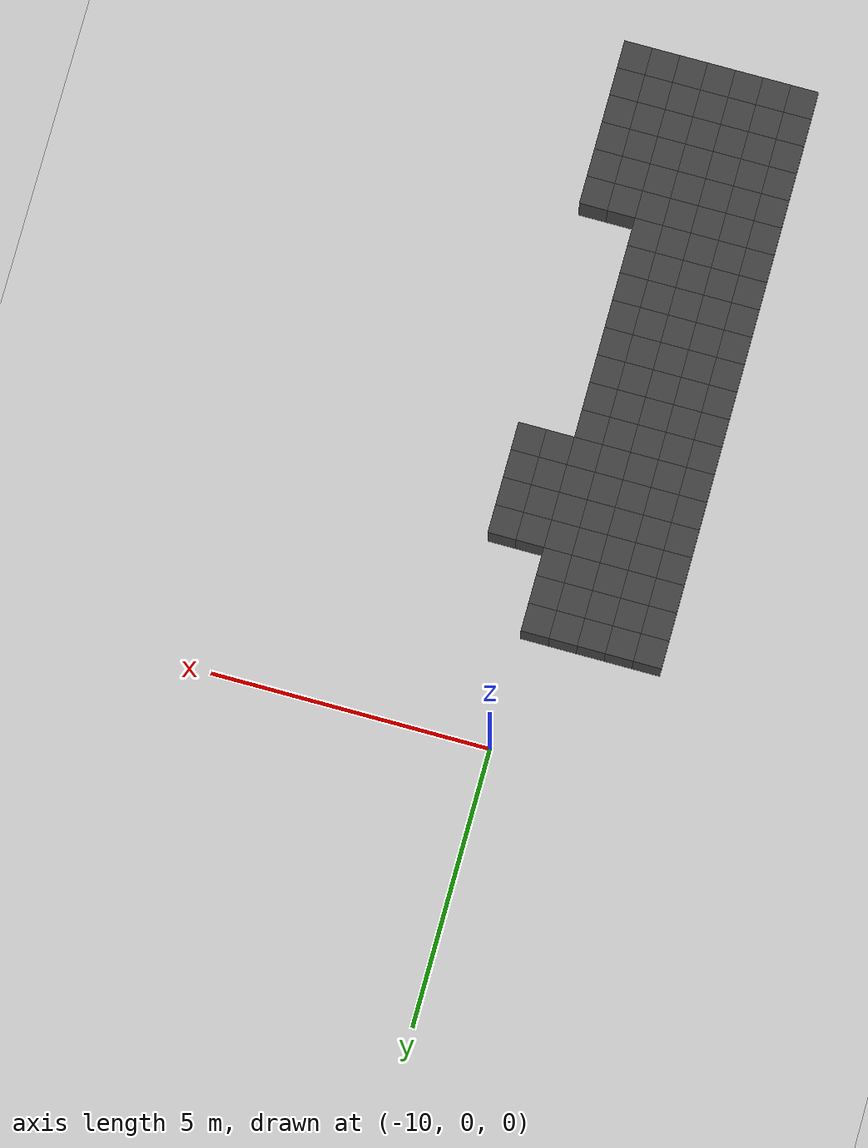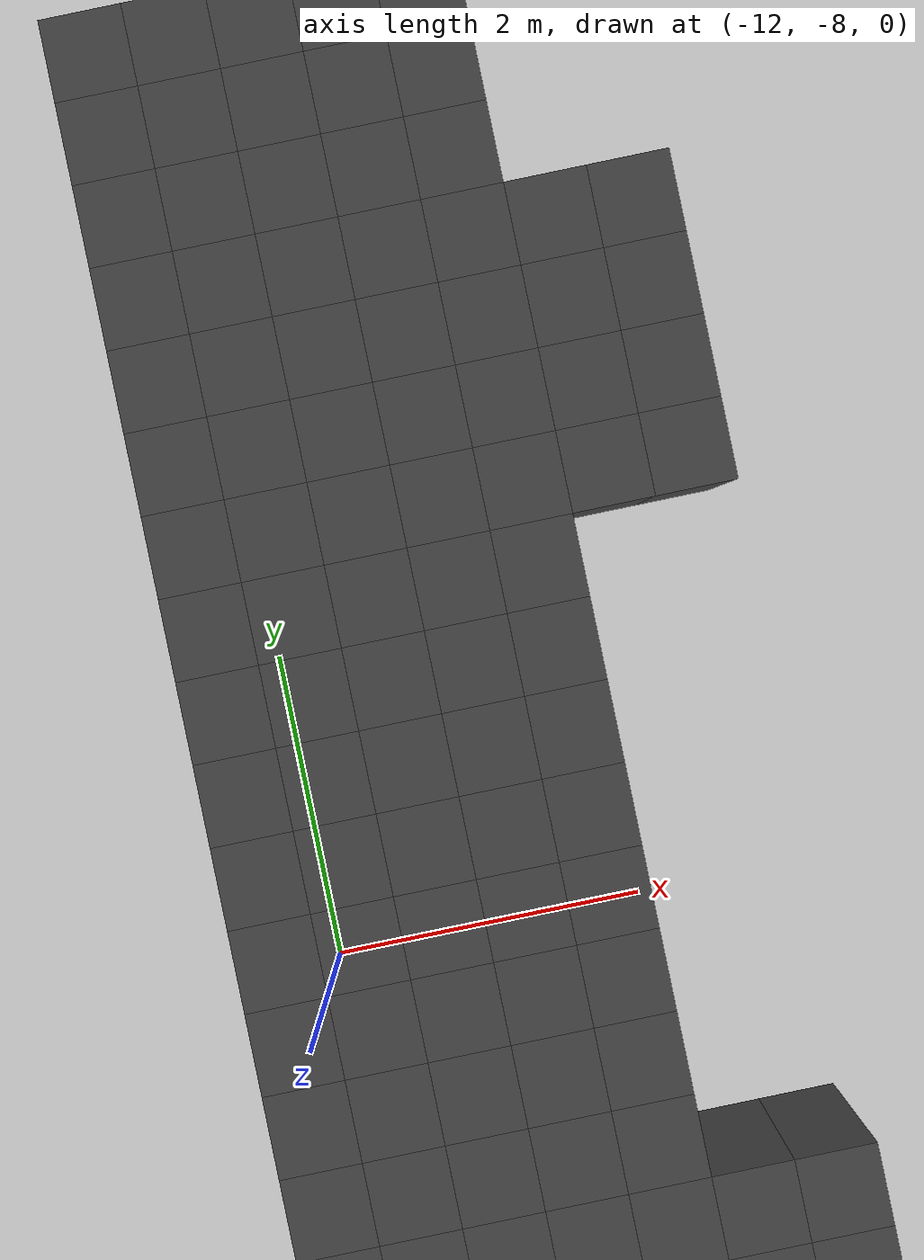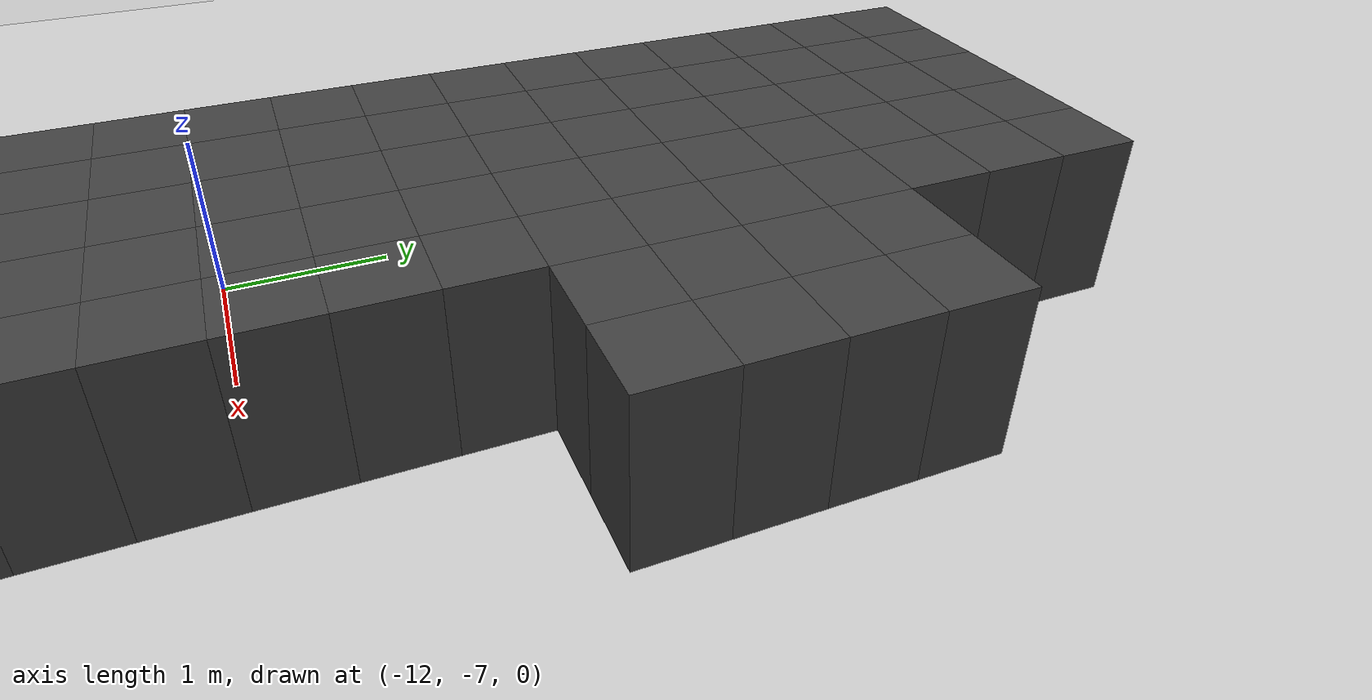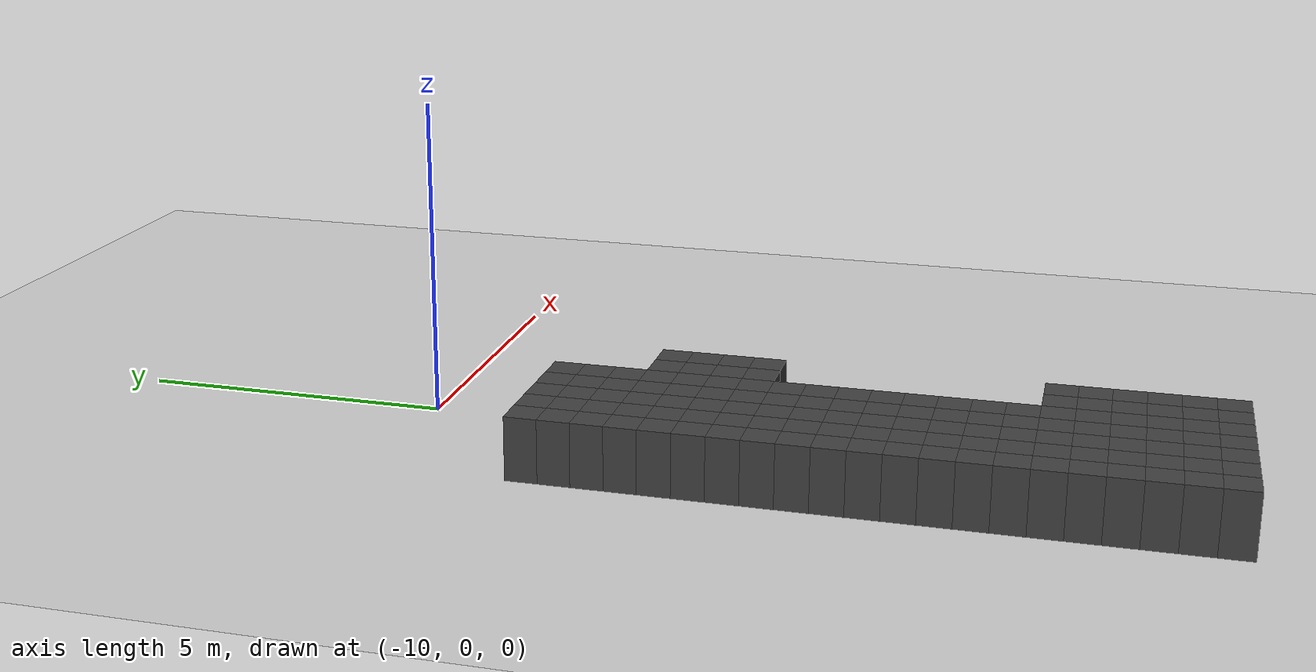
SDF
<sdf version="1.7">
 <world name="map_14495">
  <model name="ground_plane">
   <static>true</static>
   <link name="link">
    <collision name="collision">
     <geometry><plane><normal>0 0 1</normal><size>200 200</size></plane></geometry>
    </collision>
    <visual name="visual">
     <geometry><plane><normal>0 0 1</normal><size>200 200</size></plane></geometry>
     <material><ambient>0.8 0.8 0.8 1</ambient><diffuse>0.8 0.8 0.8 1</diffuse></material>
    </visual>
   </link>
  </model>
  <model name="maze_environment">
   <static>true</static>
   <link name="wall_1046">
    <pose>-12.250 -2.250 0.500 0 0 0</pose>
    <collision name="col"><geometry><box><size>0.5 0.5 1.0</size></box></geometry></collision>
    <visual name="vis">
     <geometry><box><size>0.5 0.5 1.0</size></box></geometry>
     <material><ambient>0.15 0.15 0.15 1</ambient><diffuse>0.25 0.25 0.25 1</diffuse></material>
    </visual>
   </link>
   <link name="wall_1047">
    <pose>-11.750 -2.250 0.500 0 0 0</pose>
    <collision name="col"><geometry><box><size>0.5 0.5 1.0</size></box></geometry></collision>
    <visual name="vis">
     <geometry><box><size>0.5 0.5 1.0</size></box></geometry>
     <material><ambient>0.15 0.15 0.15 1</ambient><diffuse>0.25 0.25 0.25 1</diffuse></material>
    </visual>
   </link>
   <link name="wall_1048">
    <pose>-11.250 -2.250 0.500 0 0 0</pose>
    <collision name="col"><geometry><box><size>0.5 0.5 1.0</size></box></geometry></collision>
    <visual name="vis">
     <geometry><box><size>0.5 0.5 1.0</size></box></geometry>
     <material><ambient>0.15 0.15 0.15 1</ambient><diffuse>0.25 0.25 0.25 1</diffuse></material>
    </visual>
   </link>
   <link name="wall_1049">
    <pose>-10.750 -2.250 0.500 0 0 0</pose>
    <collision name="col"><geometry><box><size>0.5 0.5 1.0</size></box></geometry></collision>
    <visual name="vis">
     <geometry><box><size>0.5 0.5 1.0</size></box></geometry>
     <material><ambient>0.15 0.15 0.15 1</ambient><diffuse>0.25 0.25 0.25 1</diffuse></material>
    </visual>
   </link>
   <link name="wall_1050">
    <pose>-10.250 -2.250 0.500 0 0 0</pose>
    <collision name="col"><geometry><box><size>0.5 0.5 1.0</size></box></geometry></collision>
    <visual name="vis">
     <geometry><box><size>0.5 0.5 1.0</size></box></geometry>
     <material><ambient>0.15 0.15 0.15 1</ambient><diffuse>0.25 0.25 0.25 1</diffuse></material>
    </visual>
   </link>
   <link name="wall_1079">
    <pose>-12.250 -2.750 0.500 0 0 0</pose>
    <collision name="col"><geometry><box><size>0.5 0.5 1.0</size></box></geometry></collision>
    <visual name="vis">
     <geometry><box><size>0.5 0.5 1.0</size></box></geometry>
     <material><ambient>0.15 0.15 0.15 1</ambient><diffuse>0.25 0.25 0.25 1</diffuse></material>
    </visual>
   </link>
   <link name="wall_1080">
    <pose>-11.750 -2.750 0.500 0 0 0</pose>
    <collision name="col"><geometry><box><size>0.5 0.5 1.0</size></box></geometry></collision>
    <visual name="vis">
     <geometry><box><size>0.5 0.5 1.0</size></box></geometry>
     <material><ambient>0.15 0.15 0.15 1</ambient><diffuse>0.25 0.25 0.25 1</diffuse></material>
    </visual>
   </link>
   <link name="wall_1081">
    <pose>-11.250 -2.750 0.500 0 0 0</pose>
    <collision name="col"><geometry><box><size>0.5 0.5 1.0</size></box></geometry></collision>
    <visual name="vis">
     <geometry><box><size>0.5 0.5 1.0</size></box></geometry>
     <material><ambient>0.15 0.15 0.15 1</ambient><diffuse>0.25 0.25 0.25 1</diffuse></material>
    </visual>
   </link>
   <link name="wall_1082">
    <pose>-10.750 -2.750 0.500 0 0 0</pose>
    <collision name="col"><geometry><box><size>0.5 0.5 1.0</size></box></geometry></collision>
    <visual name="vis">
     <geometry><box><size>0.5 0.5 1.0</size></box></geometry>
     <material><ambient>0.15 0.15 0.15 1</ambient><diffuse>0.25 0.25 0.25 1</diffuse></material>
    </visual>
   </link>
   <link name="wall_1083">
    <pose>-10.250 -2.750 0.500 0 0 0</pose>
    <collision name="col"><geometry><box><size>0.5 0.5 1.0</size></box></geometry></collision>
    <visual name="vis">
     <geometry><box><size>0.5 0.5 1.0</size></box></geometry>
     <material><ambient>0.15 0.15 0.15 1</ambient><diffuse>0.25 0.25 0.25 1</diffuse></material>
    </visual>
   </link>
   <link name="wall_1114">
    <pose>-12.250 -3.250 0.500 0 0 0</pose>
    <collision name="col"><geometry><box><size>0.5 0.5 1.0</size></box></geometry></collision>
    <visual name="vis">
     <geometry><box><size>0.5 0.5 1.0</size></box></geometry>
     <material><ambient>0.15 0.15 0.15 1</ambient><diffuse>0.25 0.25 0.25 1</diffuse></material>
    </visual>
   </link>
   <link name="wall_1115">
    <pose>-11.750 -3.250 0.500 0 0 0</pose>
    <collision name="col"><geometry><box><size>0.5 0.5 1.0</size></box></geometry></collision>
    <visual name="vis">
     <geometry><box><size>0.5 0.5 1.0</size></box></geometry>
     <material><ambient>0.15 0.15 0.15 1</ambient><diffuse>0.25 0.25 0.25 1</diffuse></material>
    </visual>
   </link>
   <link name="wall_1116">
    <pose>-11.250 -3.250 0.500 0 0 0</pose>
    <collision name="col"><geometry><box><size>0.5 0.5 1.0</size></box></geometry></collision>
    <visual name="vis">
     <geometry><box><size>0.5 0.5 1.0</size></box></geometry>
     <material><ambient>0.15 0.15 0.15 1</ambient><diffuse>0.25 0.25 0.25 1</diffuse></material>
    </visual>
   </link>
   <link name="wall_1117">
    <pose>-10.750 -3.250 0.500 0 0 0</pose>
    <collision name="col"><geometry><box><size>0.5 0.5 1.0</size></box></geometry></collision>
    <visual name="vis">
     <geometry><box><size>0.5 0.5 1.0</size></box></geometry>
     <material><ambient>0.15 0.15 0.15 1</ambient><diffuse>0.25 0.25 0.25 1</diffuse></material>
    </visual>
   </link>
   <link name="wall_1118">
    <pose>-10.250 -3.250 0.500 0 0 0</pose>
    <collision name="col"><geometry><box><size>0.5 0.5 1.0</size></box></geometry></collision>
    <visual name="vis">
     <geometry><box><size>0.5 0.5 1.0</size></box></geometry>
     <material><ambient>0.15 0.15 0.15 1</ambient><diffuse>0.25 0.25 0.25 1</diffuse></material>
    </visual>
   </link>
   <link name="wall_1149">
    <pose>-12.250 -3.750 0.500 0 0 0</pose>
    <collision name="col"><geometry><box><size>0.5 0.5 1.0</size></box></geometry></collision>
    <visual name="vis">
     <geometry><box><size>0.5 0.5 1.0</size></box></geometry>
     <material><ambient>0.15 0.15 0.15 1</ambient><diffuse>0.25 0.25 0.25 1</diffuse></material>
    </visual>
   </link>
   <link name="wall_1150">
    <pose>-11.750 -3.750 0.500 0 0 0</pose>
    <collision name="col"><geometry><box><size>0.5 0.5 1.0</size></box></geometry></collision>
    <visual name="vis">
     <geometry><box><size>0.5 0.5 1.0</size></box></geometry>
     <material><ambient>0.15 0.15 0.15 1</ambient><diffuse>0.25 0.25 0.25 1</diffuse></material>
    </visual>
   </link>
   <link name="wall_1151">
    <pose>-11.250 -3.750 0.500 0 0 0</pose>
    <collision name="col"><geometry><box><size>0.5 0.5 1.0</size></box></geometry></collision>
    <visual name="vis">
     <geometry><box><size>0.5 0.5 1.0</size></box></geometry>
     <material><ambient>0.15 0.15 0.15 1</ambient><diffuse>0.25 0.25 0.25 1</diffuse></material>
    </visual>
   </link>
   <link name="wall_1152">
    <pose>-10.750 -3.750 0.500 0 0 0</pose>
    <collision name="col"><geometry><box><size>0.5 0.5 1.0</size></box></geometry></collision>
    <visual name="vis">
     <geometry><box><size>0.5 0.5 1.0</size></box></geometry>
     <material><ambient>0.15 0.15 0.15 1</ambient><diffuse>0.25 0.25 0.25 1</diffuse></material>
    </visual>
   </link>
   <link name="wall_1153">
    <pose>-10.250 -3.750 0.500 0 0 0</pose>
    <collision name="col"><geometry><box><size>0.5 0.5 1.0</size></box></geometry></collision>
    <visual name="vis">
     <geometry><box><size>0.5 0.5 1.0</size></box></geometry>
     <material><ambient>0.15 0.15 0.15 1</ambient><diffuse>0.25 0.25 0.25 1</diffuse></material>
    </visual>
   </link>
   <link name="wall_1154">
    <pose>-9.750 -3.750 0.500 0 0 0</pose>
    <collision name="col"><geometry><box><size>0.5 0.5 1.0</size></box></geometry></collision>
    <visual name="vis">
     <geometry><box><size>0.5 0.5 1.0</size></box></geometry>
     <material><ambient>0.15 0.15 0.15 1</ambient><diffuse>0.25 0.25 0.25 1</diffuse></material>
    </visual>
   </link>
   <link name="wall_1155">
    <pose>-9.250 -3.750 0.500 0 0 0</pose>
    <collision name="col"><geometry><box><size>0.5 0.5 1.0</size></box></geometry></collision>
    <visual name="vis">
     <geometry><box><size>0.5 0.5 1.0</size></box></geometry>
     <material><ambient>0.15 0.15 0.15 1</ambient><diffuse>0.25 0.25 0.25 1</diffuse></material>
    </visual>
   </link>
   <link name="wall_1196">
    <pose>-12.250 -4.250 0.500 0 0 0</pose>
    <collision name="col"><geometry><box><size>0.5 0.5 1.0</size></box></geometry></collision>
    <visual name="vis">
     <geometry><box><size>0.5 0.5 1.0</size></box></geometry>
     <material><ambient>0.15 0.15 0.15 1</ambient><diffuse>0.25 0.25 0.25 1</diffuse></material>
    </visual>
   </link>
   <link name="wall_1197">
    <pose>-11.750 -4.250 0.500 0 0 0</pose>
    <collision name="col"><geometry><box><size>0.5 0.5 1.0</size></box></geometry></collision>
    <visual name="vis">
     <geometry><box><size>0.5 0.5 1.0</size></box></geometry>
     <material><ambient>0.15 0.15 0.15 1</ambient><diffuse>0.25 0.25 0.25 1</diffuse></material>
    </visual>
   </link>
   <link name="wall_1198">
    <pose>-11.250 -4.250 0.500 0 0 0</pose>
    <collision name="col"><geometry><box><size>0.5 0.5 1.0</size></box></geometry></collision>
    <visual name="vis">
     <geometry><box><size>0.5 0.5 1.0</size></box></geometry>
     <material><ambient>0.15 0.15 0.15 1</ambient><diffuse>0.25 0.25 0.25 1</diffuse></material>
    </visual>
   </link>
   <link name="wall_1199">
    <pose>-10.750 -4.250 0.500 0 0 0</pose>
    <collision name="col"><geometry><box><size>0.5 0.5 1.0</size></box></geometry></collision>
    <visual name="vis">
     <geometry><box><size>0.5 0.5 1.0</size></box></geometry>
     <material><ambient>0.15 0.15 0.15 1</ambient><diffuse>0.25 0.25 0.25 1</diffuse></material>
    </visual>
   </link>
   <link name="wall_1200">
    <pose>-10.250 -4.250 0.500 0 0 0</pose>
    <collision name="col"><geometry><box><size>0.5 0.5 1.0</size></box></geometry></collision>
    <visual name="vis">
     <geometry><box><size>0.5 0.5 1.0</size></box></geometry>
     <material><ambient>0.15 0.15 0.15 1</ambient><diffuse>0.25 0.25 0.25 1</diffuse></material>
    </visual>
   </link>
   <link name="wall_1201">
    <pose>-9.750 -4.250 0.500 0 0 0</pose>
    <collision name="col"><geometry><box><size>0.5 0.5 1.0</size></box></geometry></collision>
    <visual name="vis">
     <geometry><box><size>0.5 0.5 1.0</size></box></geometry>
     <material><ambient>0.15 0.15 0.15 1</ambient><diffuse>0.25 0.25 0.25 1</diffuse></material>
    </visual>
   </link>
   <link name="wall_1202">
    <pose>-9.250 -4.250 0.500 0 0 0</pose>
    <collision name="col"><geometry><box><size>0.5 0.5 1.0</size></box></geometry></collision>
    <visual name="vis">
     <geometry><box><size>0.5 0.5 1.0</size></box></geometry>
     <material><ambient>0.15 0.15 0.15 1</ambient><diffuse>0.25 0.25 0.25 1</diffuse></material>
    </visual>
   </link>
   <link name="wall_1243">
    <pose>-12.250 -4.750 0.500 0 0 0</pose>
    <collision name="col"><geometry><box><size>0.5 0.5 1.0</size></box></geometry></collision>
    <visual name="vis">
     <geometry><box><size>0.5 0.5 1.0</size></box></geometry>
     <material><ambient>0.15 0.15 0.15 1</ambient><diffuse>0.25 0.25 0.25 1</diffuse></material>
    </visual>
   </link>
   <link name="wall_1244">
    <pose>-11.750 -4.750 0.500 0 0 0</pose>
    <collision name="col"><geometry><box><size>0.5 0.5 1.0</size></box></geometry></collision>
    <visual name="vis">
     <geometry><box><size>0.5 0.5 1.0</size></box></geometry>
     <material><ambient>0.15 0.15 0.15 1</ambient><diffuse>0.25 0.25 0.25 1</diffuse></material>
    </visual>
   </link>
   <link name="wall_1245">
    <pose>-11.250 -4.750 0.500 0 0 0</pose>
    <collision name="col"><geometry><box><size>0.5 0.5 1.0</size></box></geometry></collision>
    <visual name="vis">
     <geometry><box><size>0.5 0.5 1.0</size></box></geometry>
     <material><ambient>0.15 0.15 0.15 1</ambient><diffuse>0.25 0.25 0.25 1</diffuse></material>
    </visual>
   </link>
   <link name="wall_1246">
    <pose>-10.750 -4.750 0.500 0 0 0</pose>
    <collision name="col"><geometry><box><size>0.5 0.5 1.0</size></box></geometry></collision>
    <visual name="vis">
     <geometry><box><size>0.5 0.5 1.0</size></box></geometry>
     <material><ambient>0.15 0.15 0.15 1</ambient><diffuse>0.25 0.25 0.25 1</diffuse></material>
    </visual>
   </link>
   <link name="wall_1247">
    <pose>-10.250 -4.750 0.500 0 0 0</pose>
    <collision name="col"><geometry><box><size>0.5 0.5 1.0</size></box></geometry></collision>
    <visual name="vis">
     <geometry><box><size>0.5 0.5 1.0</size></box></geometry>
     <material><ambient>0.15 0.15 0.15 1</ambient><diffuse>0.25 0.25 0.25 1</diffuse></material>
    </visual>
   </link>
   <link name="wall_1248">
    <pose>-9.750 -4.750 0.500 0 0 0</pose>
    <collision name="col"><geometry><box><size>0.5 0.5 1.0</size></box></geometry></collision>
    <visual name="vis">
     <geometry><box><size>0.5 0.5 1.0</size></box></geometry>
     <material><ambient>0.15 0.15 0.15 1</ambient><diffuse>0.25 0.25 0.25 1</diffuse></material>
    </visual>
   </link>
   <link name="wall_1249">
    <pose>-9.250 -4.750 0.500 0 0 0</pose>
    <collision name="col"><geometry><box><size>0.5 0.5 1.0</size></box></geometry></collision>
    <visual name="vis">
     <geometry><box><size>0.5 0.5 1.0</size></box></geometry>
     <material><ambient>0.15 0.15 0.15 1</ambient><diffuse>0.25 0.25 0.25 1</diffuse></material>
    </visual>
   </link>
   <link name="wall_1279">
    <pose>-12.250 -5.250 0.500 0 0 0</pose>
    <collision name="col"><geometry><box><size>0.5 0.5 1.0</size></box></geometry></collision>
    <visual name="vis">
     <geometry><box><size>0.5 0.5 1.0</size></box></geometry>
     <material><ambient>0.15 0.15 0.15 1</ambient><diffuse>0.25 0.25 0.25 1</diffuse></material>
    </visual>
   </link>
   <link name="wall_1280">
    <pose>-11.750 -5.250 0.500 0 0 0</pose>
    <collision name="col"><geometry><box><size>0.5 0.5 1.0</size></box></geometry></collision>
    <visual name="vis">
     <geometry><box><size>0.5 0.5 1.0</size></box></geometry>
     <material><ambient>0.15 0.15 0.15 1</ambient><diffuse>0.25 0.25 0.25 1</diffuse></material>
    </visual>
   </link>
   <link name="wall_1281">
    <pose>-11.250 -5.250 0.500 0 0 0</pose>
    <collision name="col"><geometry><box><size>0.5 0.5 1.0</size></box></geometry></collision>
    <visual name="vis">
     <geometry><box><size>0.5 0.5 1.0</size></box></geometry>
     <material><ambient>0.15 0.15 0.15 1</ambient><diffuse>0.25 0.25 0.25 1</diffuse></material>
    </visual>
   </link>
   <link name="wall_1282">
    <pose>-10.750 -5.250 0.500 0 0 0</pose>
    <collision name="col"><geometry><box><size>0.5 0.5 1.0</size></box></geometry></collision>
    <visual name="vis">
     <geometry><box><size>0.5 0.5 1.0</size></box></geometry>
     <material><ambient>0.15 0.15 0.15 1</ambient><diffuse>0.25 0.25 0.25 1</diffuse></material>
    </visual>
   </link>
   <link name="wall_1283">
    <pose>-10.250 -5.250 0.500 0 0 0</pose>
    <collision name="col"><geometry><box><size>0.5 0.5 1.0</size></box></geometry></collision>
    <visual name="vis">
     <geometry><box><size>0.5 0.5 1.0</size></box></geometry>
     <material><ambient>0.15 0.15 0.15 1</ambient><diffuse>0.25 0.25 0.25 1</diffuse></material>
    </visual>
   </link>
   <link name="wall_1284">
    <pose>-9.750 -5.250 0.500 0 0 0</pose>
    <collision name="col"><geometry><box><size>0.5 0.5 1.0</size></box></geometry></collision>
    <visual name="vis">
     <geometry><box><size>0.5 0.5 1.0</size></box></geometry>
     <material><ambient>0.15 0.15 0.15 1</ambient><diffuse>0.25 0.25 0.25 1</diffuse></material>
    </visual>
   </link>
   <link name="wall_1285">
    <pose>-9.250 -5.250 0.500 0 0 0</pose>
    <collision name="col"><geometry><box><size>0.5 0.5 1.0</size></box></geometry></collision>
    <visual name="vis">
     <geometry><box><size>0.5 0.5 1.0</size></box></geometry>
     <material><ambient>0.15 0.15 0.15 1</ambient><diffuse>0.25 0.25 0.25 1</diffuse></material>
    </visual>
   </link>
   <link name="wall_1315">
    <pose>-12.250 -5.750 0.500 0 0 0</pose>
    <collision name="col"><geometry><box><size>0.5 0.5 1.0</size></box></geometry></collision>
    <visual name="vis">
     <geometry><box><size>0.5 0.5 1.0</size></box></geometry>
     <material><ambient>0.15 0.15 0.15 1</ambient><diffuse>0.25 0.25 0.25 1</diffuse></material>
    </visual>
   </link>
   <link name="wall_1316">
    <pose>-11.750 -5.750 0.500 0 0 0</pose>
    <collision name="col"><geometry><box><size>0.5 0.5 1.0</size></box></geometry></collision>
    <visual name="vis">
     <geometry><box><size>0.5 0.5 1.0</size></box></geometry>
     <material><ambient>0.15 0.15 0.15 1</ambient><diffuse>0.25 0.25 0.25 1</diffuse></material>
    </visual>
   </link>
   <link name="wall_1317">
    <pose>-11.250 -5.750 0.500 0 0 0</pose>
    <collision name="col"><geometry><box><size>0.5 0.5 1.0</size></box></geometry></collision>
    <visual name="vis">
     <geometry><box><size>0.5 0.5 1.0</size></box></geometry>
     <material><ambient>0.15 0.15 0.15 1</ambient><diffuse>0.25 0.25 0.25 1</diffuse></material>
    </visual>
   </link>
   <link name="wall_1318">
    <pose>-10.750 -5.750 0.500 0 0 0</pose>
    <collision name="col"><geometry><box><size>0.5 0.5 1.0</size></box></geometry></collision>
    <visual name="vis">
     <geometry><box><size>0.5 0.5 1.0</size></box></geometry>
     <material><ambient>0.15 0.15 0.15 1</ambient><diffuse>0.25 0.25 0.25 1</diffuse></material>
    </visual>
   </link>
   <link name="wall_1319">
    <pose>-10.250 -5.750 0.500 0 0 0</pose>
    <collision name="col"><geometry><box><size>0.5 0.5 1.0</size></box></geometry></collision>
    <visual name="vis">
     <geometry><box><size>0.5 0.5 1.0</size></box></geometry>
     <material><ambient>0.15 0.15 0.15 1</ambient><diffuse>0.25 0.25 0.25 1</diffuse></material>
    </visual>
   </link>
   <link name="wall_1339">
    <pose>-12.250 -6.250 0.500 0 0 0</pose>
    <collision name="col"><geometry><box><size>0.5 0.5 1.0</size></box></geometry></collision>
    <visual name="vis">
     <geometry><box><size>0.5 0.5 1.0</size></box></geometry>
     <material><ambient>0.15 0.15 0.15 1</ambient><diffuse>0.25 0.25 0.25 1</diffuse></material>
    </visual>
   </link>
   <link name="wall_1340">
    <pose>-11.750 -6.250 0.500 0 0 0</pose>
    <collision name="col"><geometry><box><size>0.5 0.5 1.0</size></box></geometry></collision>
    <visual name="vis">
     <geometry><box><size>0.5 0.5 1.0</size></box></geometry>
     <material><ambient>0.15 0.15 0.15 1</ambient><diffuse>0.25 0.25 0.25 1</diffuse></material>
    </visual>
   </link>
   <link name="wall_1341">
    <pose>-11.250 -6.250 0.500 0 0 0</pose>
    <collision name="col"><geometry><box><size>0.5 0.5 1.0</size></box></geometry></collision>
    <visual name="vis">
     <geometry><box><size>0.5 0.5 1.0</size></box></geometry>
     <material><ambient>0.15 0.15 0.15 1</ambient><diffuse>0.25 0.25 0.25 1</diffuse></material>
    </visual>
   </link>
   <link name="wall_1342">
    <pose>-10.750 -6.250 0.500 0 0 0</pose>
    <collision name="col"><geometry><box><size>0.5 0.5 1.0</size></box></geometry></collision>
    <visual name="vis">
     <geometry><box><size>0.5 0.5 1.0</size></box></geometry>
     <material><ambient>0.15 0.15 0.15 1</ambient><diffuse>0.25 0.25 0.25 1</diffuse></material>
    </visual>
   </link>
   <link name="wall_1343">
    <pose>-10.250 -6.250 0.500 0 0 0</pose>
    <collision name="col"><geometry><box><size>0.5 0.5 1.0</size></box></geometry></collision>
    <visual name="vis">
     <geometry><box><size>0.5 0.5 1.0</size></box></geometry>
     <material><ambient>0.15 0.15 0.15 1</ambient><diffuse>0.25 0.25 0.25 1</diffuse></material>
    </visual>
   </link>
   <link name="wall_1361">
    <pose>-12.250 -6.750 0.500 0 0 0</pose>
    <collision name="col"><geometry><box><size>0.5 0.5 1.0</size></box></geometry></collision>
    <visual name="vis">
     <geometry><box><size>0.5 0.5 1.0</size></box></geometry>
     <material><ambient>0.15 0.15 0.15 1</ambient><diffuse>0.25 0.25 0.25 1</diffuse></material>
    </visual>
   </link>
   <link name="wall_1362">
    <pose>-11.750 -6.750 0.500 0 0 0</pose>
    <collision name="col"><geometry><box><size>0.5 0.5 1.0</size></box></geometry></collision>
    <visual name="vis">
     <geometry><box><size>0.5 0.5 1.0</size></box></geometry>
     <material><ambient>0.15 0.15 0.15 1</ambient><diffuse>0.25 0.25 0.25 1</diffuse></material>
    </visual>
   </link>
   <link name="wall_1363">
    <pose>-11.250 -6.750 0.500 0 0 0</pose>
    <collision name="col"><geometry><box><size>0.5 0.5 1.0</size></box></geometry></collision>
    <visual name="vis">
     <geometry><box><size>0.5 0.5 1.0</size></box></geometry>
     <material><ambient>0.15 0.15 0.15 1</ambient><diffuse>0.25 0.25 0.25 1</diffuse></material>
    </visual>
   </link>
   <link name="wall_1364">
    <pose>-10.750 -6.750 0.500 0 0 0</pose>
    <collision name="col"><geometry><box><size>0.5 0.5 1.0</size></box></geometry></collision>
    <visual name="vis">
     <geometry><box><size>0.5 0.5 1.0</size></box></geometry>
     <material><ambient>0.15 0.15 0.15 1</ambient><diffuse>0.25 0.25 0.25 1</diffuse></material>
    </visual>
   </link>
   <link name="wall_1365">
    <pose>-10.250 -6.750 0.500 0 0 0</pose>
    <collision name="col"><geometry><box><size>0.5 0.5 1.0</size></box></geometry></collision>
    <visual name="vis">
     <geometry><box><size>0.5 0.5 1.0</size></box></geometry>
     <material><ambient>0.15 0.15 0.15 1</ambient><diffuse>0.25 0.25 0.25 1</diffuse></material>
    </visual>
   </link>
   <link name="wall_1387">
    <pose>-12.250 -7.250 0.500 0 0 0</pose>
    <collision name="col"><geometry><box><size>0.5 0.5 1.0</size></box></geometry></collision>
    <visual name="vis">
     <geometry><box><size>0.5 0.5 1.0</size></box></geometry>
     <material><ambient>0.15 0.15 0.15 1</ambient><diffuse>0.25 0.25 0.25 1</diffuse></material>
    </visual>
   </link>
   <link name="wall_1388">
    <pose>-11.750 -7.250 0.500 0 0 0</pose>
    <collision name="col"><geometry><box><size>0.5 0.5 1.0</size></box></geometry></collision>
    <visual name="vis">
     <geometry><box><size>0.5 0.5 1.0</size></box></geometry>
     <material><ambient>0.15 0.15 0.15 1</ambient><diffuse>0.25 0.25 0.25 1</diffuse></material>
    </visual>
   </link>
   <link name="wall_1389">
    <pose>-11.250 -7.250 0.500 0 0 0</pose>
    <collision name="col"><geometry><box><size>0.5 0.5 1.0</size></box></geometry></collision>
    <visual name="vis">
     <geometry><box><size>0.5 0.5 1.0</size></box></geometry>
     <material><ambient>0.15 0.15 0.15 1</ambient><diffuse>0.25 0.25 0.25 1</diffuse></material>
    </visual>
   </link>
   <link name="wall_1390">
    <pose>-10.750 -7.250 0.500 0 0 0</pose>
    <collision name="col"><geometry><box><size>0.5 0.5 1.0</size></box></geometry></collision>
    <visual name="vis">
     <geometry><box><size>0.5 0.5 1.0</size></box></geometry>
     <material><ambient>0.15 0.15 0.15 1</ambient><diffuse>0.25 0.25 0.25 1</diffuse></material>
    </visual>
   </link>
   <link name="wall_1391">
    <pose>-10.250 -7.250 0.500 0 0 0</pose>
    <collision name="col"><geometry><box><size>0.5 0.5 1.0</size></box></geometry></collision>
    <visual name="vis">
     <geometry><box><size>0.5 0.5 1.0</size></box></geometry>
     <material><ambient>0.15 0.15 0.15 1</ambient><diffuse>0.25 0.25 0.25 1</diffuse></material>
    </visual>
   </link>
   <link name="wall_1420">
    <pose>-12.250 -7.750 0.500 0 0 0</pose>
    <collision name="col"><geometry><box><size>0.5 0.5 1.0</size></box></geometry></collision>
    <visual name="vis">
     <geometry><box><size>0.5 0.5 1.0</size></box></geometry>
     <material><ambient>0.15 0.15 0.15 1</ambient><diffuse>0.25 0.25 0.25 1</diffuse></material>
    </visual>
   </link>
   <link name="wall_1421">
    <pose>-11.750 -7.750 0.500 0 0 0</pose>
    <collision name="col"><geometry><box><size>0.5 0.5 1.0</size></box></geometry></collision>
    <visual name="vis">
     <geometry><box><size>0.5 0.5 1.0</size></box></geometry>
     <material><ambient>0.15 0.15 0.15 1</ambient><diffuse>0.25 0.25 0.25 1</diffuse></material>
    </visual>
   </link>
   <link name="wall_1422">
    <pose>-11.250 -7.750 0.500 0 0 0</pose>
    <collision name="col"><geometry><box><size>0.5 0.5 1.0</size></box></geometry></collision>
    <visual name="vis">
     <geometry><box><size>0.5 0.5 1.0</size></box></geometry>
     <material><ambient>0.15 0.15 0.15 1</ambient><diffuse>0.25 0.25 0.25 1</diffuse></material>
    </visual>
   </link>
   <link name="wall_1423">
    <pose>-10.750 -7.750 0.500 0 0 0</pose>
    <collision name="col"><geometry><box><size>0.5 0.5 1.0</size></box></geometry></collision>
    <visual name="vis">
     <geometry><box><size>0.5 0.5 1.0</size></box></geometry>
     <material><ambient>0.15 0.15 0.15 1</ambient><diffuse>0.25 0.25 0.25 1</diffuse></material>
    </visual>
   </link>
   <link name="wall_1424">
    <pose>-10.250 -7.750 0.500 0 0 0</pose>
    <collision name="col"><geometry><box><size>0.5 0.5 1.0</size></box></geometry></collision>
    <visual name="vis">
     <geometry><box><size>0.5 0.5 1.0</size></box></geometry>
     <material><ambient>0.15 0.15 0.15 1</ambient><diffuse>0.25 0.25 0.25 1</diffuse></material>
    </visual>
   </link>
   <link name="wall_1453">
    <pose>-12.250 -8.250 0.500 0 0 0</pose>
    <collision name="col"><geometry><box><size>0.5 0.5 1.0</size></box></geometry></collision>
    <visual name="vis">
     <geometry><box><size>0.5 0.5 1.0</size></box></geometry>
     <material><ambient>0.15 0.15 0.15 1</ambient><diffuse>0.25 0.25 0.25 1</diffuse></material>
    </visual>
   </link>
   <link name="wall_1454">
    <pose>-11.750 -8.250 0.500 0 0 0</pose>
    <collision name="col"><geometry><box><size>0.5 0.5 1.0</size></box></geometry></collision>
    <visual name="vis">
     <geometry><box><size>0.5 0.5 1.0</size></box></geometry>
     <material><ambient>0.15 0.15 0.15 1</ambient><diffuse>0.25 0.25 0.25 1</diffuse></material>
    </visual>
   </link>
   <link name="wall_1455">
    <pose>-11.250 -8.250 0.500 0 0 0</pose>
    <collision name="col"><geometry><box><size>0.5 0.5 1.0</size></box></geometry></collision>
    <visual name="vis">
     <geometry><box><size>0.5 0.5 1.0</size></box></geometry>
     <material><ambient>0.15 0.15 0.15 1</ambient><diffuse>0.25 0.25 0.25 1</diffuse></material>
    </visual>
   </link>
   <link name="wall_1456">
    <pose>-10.750 -8.250 0.500 0 0 0</pose>
    <collision name="col"><geometry><box><size>0.5 0.5 1.0</size></box></geometry></collision>
    <visual name="vis">
     <geometry><box><size>0.5 0.5 1.0</size></box></geometry>
     <material><ambient>0.15 0.15 0.15 1</ambient><diffuse>0.25 0.25 0.25 1</diffuse></material>
    </visual>
   </link>
   <link name="wall_1457">
    <pose>-10.250 -8.250 0.500 0 0 0</pose>
    <collision name="col"><geometry><box><size>0.5 0.5 1.0</size></box></geometry></collision>
    <visual name="vis">
     <geometry><box><size>0.5 0.5 1.0</size></box></geometry>
     <material><ambient>0.15 0.15 0.15 1</ambient><diffuse>0.25 0.25 0.25 1</diffuse></material>
    </visual>
   </link>
   <link name="wall_1484">
    <pose>-12.250 -8.750 0.500 0 0 0</pose>
    <collision name="col"><geometry><box><size>0.5 0.5 1.0</size></box></geometry></collision>
    <visual name="vis">
     <geometry><box><size>0.5 0.5 1.0</size></box></geometry>
     <material><ambient>0.15 0.15 0.15 1</ambient><diffuse>0.25 0.25 0.25 1</diffuse></material>
    </visual>
   </link>
   <link name="wall_1485">
    <pose>-11.750 -8.750 0.500 0 0 0</pose>
    <collision name="col"><geometry><box><size>0.5 0.5 1.0</size></box></geometry></collision>
    <visual name="vis">
     <geometry><box><size>0.5 0.5 1.0</size></box></geometry>
     <material><ambient>0.15 0.15 0.15 1</ambient><diffuse>0.25 0.25 0.25 1</diffuse></material>
    </visual>
   </link>
   <link name="wall_1486">
    <pose>-11.250 -8.750 0.500 0 0 0</pose>
    <collision name="col"><geometry><box><size>0.5 0.5 1.0</size></box></geometry></collision>
    <visual name="vis">
     <geometry><box><size>0.5 0.5 1.0</size></box></geometry>
     <material><ambient>0.15 0.15 0.15 1</ambient><diffuse>0.25 0.25 0.25 1</diffuse></material>
    </visual>
   </link>
   <link name="wall_1487">
    <pose>-10.750 -8.750 0.500 0 0 0</pose>
    <collision name="col"><geometry><box><size>0.5 0.5 1.0</size></box></geometry></collision>
    <visual name="vis">
     <geometry><box><size>0.5 0.5 1.0</size></box></geometry>
     <material><ambient>0.15 0.15 0.15 1</ambient><diffuse>0.25 0.25 0.25 1</diffuse></material>
    </visual>
   </link>
   <link name="wall_1488">
    <pose>-10.250 -8.750 0.500 0 0 0</pose>
    <collision name="col"><geometry><box><size>0.5 0.5 1.0</size></box></geometry></collision>
    <visual name="vis">
     <geometry><box><size>0.5 0.5 1.0</size></box></geometry>
     <material><ambient>0.15 0.15 0.15 1</ambient><diffuse>0.25 0.25 0.25 1</diffuse></material>
    </visual>
   </link>
   <link name="wall_1515">
    <pose>-12.250 -9.250 0.500 0 0 0</pose>
    <collision name="col"><geometry><box><size>0.5 0.5 1.0</size></box></geometry></collision>
    <visual name="vis">
     <geometry><box><size>0.5 0.5 1.0</size></box></geometry>
     <material><ambient>0.15 0.15 0.15 1</ambient><diffuse>0.25 0.25 0.25 1</diffuse></material>
    </visual>
   </link>
   <link name="wall_1516">
    <pose>-11.750 -9.250 0.500 0 0 0</pose>
    <collision name="col"><geometry><box><size>0.5 0.5 1.0</size></box></geometry></collision>
    <visual name="vis">
     <geometry><box><size>0.5 0.5 1.0</size></box></geometry>
     <material><ambient>0.15 0.15 0.15 1</ambient><diffuse>0.25 0.25 0.25 1</diffuse></material>
    </visual>
   </link>
   <link name="wall_1517">
    <pose>-11.250 -9.250 0.500 0 0 0</pose>
    <collision name="col"><geometry><box><size>0.5 0.5 1.0</size></box></geometry></collision>
    <visual name="vis">
     <geometry><box><size>0.5 0.5 1.0</size></box></geometry>
     <material><ambient>0.15 0.15 0.15 1</ambient><diffuse>0.25 0.25 0.25 1</diffuse></material>
    </visual>
   </link>
   <link name="wall_1518">
    <pose>-10.750 -9.250 0.500 0 0 0</pose>
    <collision name="col"><geometry><box><size>0.5 0.5 1.0</size></box></geometry></collision>
    <visual name="vis">
     <geometry><box><size>0.5 0.5 1.0</size></box></geometry>
     <material><ambient>0.15 0.15 0.15 1</ambient><diffuse>0.25 0.25 0.25 1</diffuse></material>
    </visual>
   </link>
   <link name="wall_1519">
    <pose>-10.250 -9.250 0.500 0 0 0</pose>
    <collision name="col"><geometry><box><size>0.5 0.5 1.0</size></box></geometry></collision>
    <visual name="vis">
     <geometry><box><size>0.5 0.5 1.0</size></box></geometry>
     <material><ambient>0.15 0.15 0.15 1</ambient><diffuse>0.25 0.25 0.25 1</diffuse></material>
    </visual>
   </link>
   <link name="wall_1546">
    <pose>-12.250 -9.750 0.500 0 0 0</pose>
    <collision name="col"><geometry><box><size>0.5 0.5 1.0</size></box></geometry></collision>
    <visual name="vis">
     <geometry><box><size>0.5 0.5 1.0</size></box></geometry>
     <material><ambient>0.15 0.15 0.15 1</ambient><diffuse>0.25 0.25 0.25 1</diffuse></material>
    </visual>
   </link>
   <link name="wall_1547">
    <pose>-11.750 -9.750 0.500 0 0 0</pose>
    <collision name="col"><geometry><box><size>0.5 0.5 1.0</size></box></geometry></collision>
    <visual name="vis">
     <geometry><box><size>0.5 0.5 1.0</size></box></geometry>
     <material><ambient>0.15 0.15 0.15 1</ambient><diffuse>0.25 0.25 0.25 1</diffuse></material>
    </visual>
   </link>
   <link name="wall_1548">
    <pose>-11.250 -9.750 0.500 0 0 0</pose>
    <collision name="col"><geometry><box><size>0.5 0.5 1.0</size></box></geometry></collision>
    <visual name="vis">
     <geometry><box><size>0.5 0.5 1.0</size></box></geometry>
     <material><ambient>0.15 0.15 0.15 1</ambient><diffuse>0.25 0.25 0.25 1</diffuse></material>
    </visual>
   </link>
   <link name="wall_1549">
    <pose>-10.750 -9.750 0.500 0 0 0</pose>
    <collision name="col"><geometry><box><size>0.5 0.5 1.0</size></box></geometry></collision>
    <visual name="vis">
     <geometry><box><size>0.5 0.5 1.0</size></box></geometry>
     <material><ambient>0.15 0.15 0.15 1</ambient><diffuse>0.25 0.25 0.25 1</diffuse></material>
    </visual>
   </link>
   <link name="wall_1550">
    <pose>-10.250 -9.750 0.500 0 0 0</pose>
    <collision name="col"><geometry><box><size>0.5 0.5 1.0</size></box></geometry></collision>
    <visual name="vis">
     <geometry><box><size>0.5 0.5 1.0</size></box></geometry>
     <material><ambient>0.15 0.15 0.15 1</ambient><diffuse>0.25 0.25 0.25 1</diffuse></material>
    </visual>
   </link>
   <link name="wall_1551">
    <pose>-9.750 -9.750 0.500 0 0 0</pose>
    <collision name="col"><geometry><box><size>0.5 0.5 1.0</size></box></geometry></collision>
    <visual name="vis">
     <geometry><box><size>0.5 0.5 1.0</size></box></geometry>
     <material><ambient>0.15 0.15 0.15 1</ambient><diffuse>0.25 0.25 0.25 1</diffuse></material>
    </visual>
   </link>
   <link name="wall_1552">
    <pose>-9.250 -9.750 0.500 0 0 0</pose>
    <collision name="col"><geometry><box><size>0.5 0.5 1.0</size></box></geometry></collision>
    <visual name="vis">
     <geometry><box><size>0.5 0.5 1.0</size></box></geometry>
     <material><ambient>0.15 0.15 0.15 1</ambient><diffuse>0.25 0.25 0.25 1</diffuse></material>
    </visual>
   </link>
   <link name="wall_1576">
    <pose>-12.250 -10.250 0.500 0 0 0</pose>
    <collision name="col"><geometry><box><size>0.5 0.5 1.0</size></box></geometry></collision>
    <visual name="vis">
     <geometry><box><size>0.5 0.5 1.0</size></box></geometry>
     <material><ambient>0.15 0.15 0.15 1</ambient><diffuse>0.25 0.25 0.25 1</diffuse></material>
    </visual>
   </link>
   <link name="wall_1577">
    <pose>-11.750 -10.250 0.500 0 0 0</pose>
    <collision name="col"><geometry><box><size>0.5 0.5 1.0</size></box></geometry></collision>
    <visual name="vis">
     <geometry><box><size>0.5 0.5 1.0</size></box></geometry>
     <material><ambient>0.15 0.15 0.15 1</ambient><diffuse>0.25 0.25 0.25 1</diffuse></material>
    </visual>
   </link>
   <link name="wall_1578">
    <pose>-11.250 -10.250 0.500 0 0 0</pose>
    <collision name="col"><geometry><box><size>0.5 0.5 1.0</size></box></geometry></collision>
    <visual name="vis">
     <geometry><box><size>0.5 0.5 1.0</size></box></geometry>
     <material><ambient>0.15 0.15 0.15 1</ambient><diffuse>0.25 0.25 0.25 1</diffuse></material>
    </visual>
   </link>
   <link name="wall_1579">
    <pose>-10.750 -10.250 0.500 0 0 0</pose>
    <collision name="col"><geometry><box><size>0.5 0.5 1.0</size></box></geometry></collision>
    <visual name="vis">
     <geometry><box><size>0.5 0.5 1.0</size></box></geometry>
     <material><ambient>0.15 0.15 0.15 1</ambient><diffuse>0.25 0.25 0.25 1</diffuse></material>
    </visual>
   </link>
   <link name="wall_1580">
    <pose>-10.250 -10.250 0.500 0 0 0</pose>
    <collision name="col"><geometry><box><size>0.5 0.5 1.0</size></box></geometry></collision>
    <visual name="vis">
     <geometry><box><size>0.5 0.5 1.0</size></box></geometry>
     <material><ambient>0.15 0.15 0.15 1</ambient><diffuse>0.25 0.25 0.25 1</diffuse></material>
    </visual>
   </link>
   <link name="wall_1581">
    <pose>-9.750 -10.250 0.500 0 0 0</pose>
    <collision name="col"><geometry><box><size>0.5 0.5 1.0</size></box></geometry></collision>
    <visual name="vis">
     <geometry><box><size>0.5 0.5 1.0</size></box></geometry>
     <material><ambient>0.15 0.15 0.15 1</ambient><diffuse>0.25 0.25 0.25 1</diffuse></material>
    </visual>
   </link>
   <link name="wall_1582">
    <pose>-9.250 -10.250 0.500 0 0 0</pose>
    <collision name="col"><geometry><box><size>0.5 0.5 1.0</size></box></geometry></collision>
    <visual name="vis">
     <geometry><box><size>0.5 0.5 1.0</size></box></geometry>
     <material><ambient>0.15 0.15 0.15 1</ambient><diffuse>0.25 0.25 0.25 1</diffuse></material>
    </visual>
   </link>
   <link name="wall_1609">
    <pose>-12.250 -10.750 0.500 0 0 0</pose>
    <collision name="col"><geometry><box><size>0.5 0.5 1.0</size></box></geometry></collision>
    <visual name="vis">
     <geometry><box><size>0.5 0.5 1.0</size></box></geometry>
     <material><ambient>0.15 0.15 0.15 1</ambient><diffuse>0.25 0.25 0.25 1</diffuse></material>
    </visual>
   </link>
   <link name="wall_1610">
    <pose>-11.750 -10.750 0.500 0 0 0</pose>
    <collision name="col"><geometry><box><size>0.5 0.5 1.0</size></box></geometry></collision>
    <visual name="vis">
     <geometry><box><size>0.5 0.5 1.0</size></box></geometry>
     <material><ambient>0.15 0.15 0.15 1</ambient><diffuse>0.25 0.25 0.25 1</diffuse></material>
    </visual>
   </link>
   <link name="wall_1611">
    <pose>-11.250 -10.750 0.500 0 0 0</pose>
    <collision name="col"><geometry><box><size>0.5 0.5 1.0</size></box></geometry></collision>
    <visual name="vis">
     <geometry><box><size>0.5 0.5 1.0</size></box></geometry>
     <material><ambient>0.15 0.15 0.15 1</ambient><diffuse>0.25 0.25 0.25 1</diffuse></material>
    </visual>
   </link>
   <link name="wall_1612">
    <pose>-10.750 -10.750 0.500 0 0 0</pose>
    <collision name="col"><geometry><box><size>0.5 0.5 1.0</size></box></geometry></collision>
    <visual name="vis">
     <geometry><box><size>0.5 0.5 1.0</size></box></geometry>
     <material><ambient>0.15 0.15 0.15 1</ambient><diffuse>0.25 0.25 0.25 1</diffuse></material>
    </visual>
   </link>
   <link name="wall_1613">
    <pose>-10.250 -10.750 0.500 0 0 0</pose>
    <collision name="col"><geometry><box><size>0.5 0.5 1.0</size></box></geometry></collision>
    <visual name="vis">
     <geometry><box><size>0.5 0.5 1.0</size></box></geometry>
     <material><ambient>0.15 0.15 0.15 1</ambient><diffuse>0.25 0.25 0.25 1</diffuse></material>
    </visual>
   </link>
   <link name="wall_1614">
    <pose>-9.750 -10.750 0.500 0 0 0</pose>
    <collision name="col"><geometry><box><size>0.5 0.5 1.0</size></box></geometry></collision>
    <visual name="vis">
     <geometry><box><size>0.5 0.5 1.0</size></box></geometry>
     <material><ambient>0.15 0.15 0.15 1</ambient><diffuse>0.25 0.25 0.25 1</diffuse></material>
    </visual>
   </link>
   <link name="wall_1615">
    <pose>-9.250 -10.750 0.500 0 0 0</pose>
    <collision name="col"><geometry><box><size>0.5 0.5 1.0</size></box></geometry></collision>
    <visual name="vis">
     <geometry><box><size>0.5 0.5 1.0</size></box></geometry>
     <material><ambient>0.15 0.15 0.15 1</ambient><diffuse>0.25 0.25 0.25 1</diffuse></material>
    </visual>
   </link>
   <link name="wall_1641">
    <pose>-12.250 -11.250 0.500 0 0 0</pose>
    <collision name="col"><geometry><box><size>0.5 0.5 1.0</size></box></geometry></collision>
    <visual name="vis">
     <geometry><box><size>0.5 0.5 1.0</size></box></geometry>
     <material><ambient>0.15 0.15 0.15 1</ambient><diffuse>0.25 0.25 0.25 1</diffuse></material>
    </visual>
   </link>
   <link name="wall_1642">
    <pose>-11.750 -11.250 0.500 0 0 0</pose>
    <collision name="col"><geometry><box><size>0.5 0.5 1.0</size></box></geometry></collision>
    <visual name="vis">
     <geometry><box><size>0.5 0.5 1.0</size></box></geometry>
     <material><ambient>0.15 0.15 0.15 1</ambient><diffuse>0.25 0.25 0.25 1</diffuse></material>
    </visual>
   </link>
   <link name="wall_1643">
    <pose>-11.250 -11.250 0.500 0 0 0</pose>
    <collision name="col"><geometry><box><size>0.5 0.5 1.0</size></box></geometry></collision>
    <visual name="vis">
     <geometry><box><size>0.5 0.5 1.0</size></box></geometry>
     <material><ambient>0.15 0.15 0.15 1</ambient><diffuse>0.25 0.25 0.25 1</diffuse></material>
    </visual>
   </link>
   <link name="wall_1644">
    <pose>-10.750 -11.250 0.500 0 0 0</pose>
    <collision name="col"><geometry><box><size>0.5 0.5 1.0</size></box></geometry></collision>
    <visual name="vis">
     <geometry><box><size>0.5 0.5 1.0</size></box></geometry>
     <material><ambient>0.15 0.15 0.15 1</ambient><diffuse>0.25 0.25 0.25 1</diffuse></material>
    </visual>
   </link>
   <link name="wall_1645">
    <pose>-10.250 -11.250 0.500 0 0 0</pose>
    <collision name="col"><geometry><box><size>0.5 0.5 1.0</size></box></geometry></collision>
    <visual name="vis">
     <geometry><box><size>0.5 0.5 1.0</size></box></geometry>
     <material><ambient>0.15 0.15 0.15 1</ambient><diffuse>0.25 0.25 0.25 1</diffuse></material>
    </visual>
   </link>
   <link name="wall_1646">
    <pose>-9.750 -11.250 0.500 0 0 0</pose>
    <collision name="col"><geometry><box><size>0.5 0.5 1.0</size></box></geometry></collision>
    <visual name="vis">
     <geometry><box><size>0.5 0.5 1.0</size></box></geometry>
     <material><ambient>0.15 0.15 0.15 1</ambient><diffuse>0.25 0.25 0.25 1</diffuse></material>
    </visual>
   </link>
   <link name="wall_1647">
    <pose>-9.250 -11.250 0.500 0 0 0</pose>
    <collision name="col"><geometry><box><size>0.5 0.5 1.0</size></box></geometry></collision>
    <visual name="vis">
     <geometry><box><size>0.5 0.5 1.0</size></box></geometry>
     <material><ambient>0.15 0.15 0.15 1</ambient><diffuse>0.25 0.25 0.25 1</diffuse></material>
    </visual>
   </link>
   <link name="wall_1671">
    <pose>-12.250 -11.750 0.500 0 0 0</pose>
    <collision name="col"><geometry><box><size>0.5 0.5 1.0</size></box></geometry></collision>
    <visual name="vis">
     <geometry><box><size>0.5 0.5 1.0</size></box></geometry>
     <material><ambient>0.15 0.15 0.15 1</ambient><diffuse>0.25 0.25 0.25 1</diffuse></material>
    </visual>
   </link>
   <link name="wall_1672">
    <pose>-11.750 -11.750 0.500 0 0 0</pose>
    <collision name="col"><geometry><box><size>0.5 0.5 1.0</size></box></geometry></collision>
    <visual name="vis">
     <geometry><box><size>0.5 0.5 1.0</size></box></geometry>
     <material><ambient>0.15 0.15 0.15 1</ambient><diffuse>0.25 0.25 0.25 1</diffuse></material>
    </visual>
   </link>
   <link name="wall_1673">
    <pose>-11.250 -11.750 0.500 0 0 0</pose>
    <collision name="col"><geometry><box><size>0.5 0.5 1.0</size></box></geometry></collision>
    <visual name="vis">
     <geometry><box><size>0.5 0.5 1.0</size></box></geometry>
     <material><ambient>0.15 0.15 0.15 1</ambient><diffuse>0.25 0.25 0.25 1</diffuse></material>
    </visual>
   </link>
   <link name="wall_1674">
    <pose>-10.750 -11.750 0.500 0 0 0</pose>
    <collision name="col"><geometry><box><size>0.5 0.5 1.0</size></box></geometry></collision>
    <visual name="vis">
     <geometry><box><size>0.5 0.5 1.0</size></box></geometry>
     <material><ambient>0.15 0.15 0.15 1</ambient><diffuse>0.25 0.25 0.25 1</diffuse></material>
    </visual>
   </link>
   <link name="wall_1675">
    <pose>-10.250 -11.750 0.500 0 0 0</pose>
    <collision name="col"><geometry><box><size>0.5 0.5 1.0</size></box></geometry></collision>
    <visual name="vis">
     <geometry><box><size>0.5 0.5 1.0</size></box></geometry>
     <material><ambient>0.15 0.15 0.15 1</ambient><diffuse>0.25 0.25 0.25 1</diffuse></material>
    </visual>
   </link>
   <link name="wall_1676">
    <pose>-9.750 -11.750 0.500 0 0 0</pose>
    <collision name="col"><geometry><box><size>0.5 0.5 1.0</size></box></geometry></collision>
    <visual name="vis">
     <geometry><box><size>0.5 0.5 1.0</size></box></geometry>
     <material><ambient>0.15 0.15 0.15 1</ambient><diffuse>0.25 0.25 0.25 1</diffuse></material>
    </visual>
   </link>
   <link name="wall_1677">
    <pose>-9.250 -11.750 0.500 0 0 0</pose>
    <collision name="col"><geometry><box><size>0.5 0.5 1.0</size></box></geometry></collision>
    <visual name="vis">
     <geometry><box><size>0.5 0.5 1.0</size></box></geometry>
     <material><ambient>0.15 0.15 0.15 1</ambient><diffuse>0.25 0.25 0.25 1</diffuse></material>
    </visual>
   </link>
   <link name="wall_1705">
    <pose>-12.250 -12.250 0.500 0 0 0</pose>
    <collision name="col"><geometry><box><size>0.5 0.5 1.0</size></box></geometry></collision>
    <visual name="vis">
     <geometry><box><size>0.5 0.5 1.0</size></box></geometry>
     <material><ambient>0.15 0.15 0.15 1</ambient><diffuse>0.25 0.25 0.25 1</diffuse></material>
    </visual>
   </link>
   <link name="wall_1706">
    <pose>-11.750 -12.250 0.500 0 0 0</pose>
    <collision name="col"><geometry><box><size>0.5 0.5 1.0</size></box></geometry></collision>
    <visual name="vis">
     <geometry><box><size>0.5 0.5 1.0</size></box></geometry>
     <material><ambient>0.15 0.15 0.15 1</ambient><diffuse>0.25 0.25 0.25 1</diffuse></material>
    </visual>
   </link>
   <link name="wall_1707">
    <pose>-11.250 -12.250 0.500 0 0 0</pose>
    <collision name="col"><geometry><box><size>0.5 0.5 1.0</size></box></geometry></collision>
    <visual name="vis">
     <geometry><box><size>0.5 0.5 1.0</size></box></geometry>
     <material><ambient>0.15 0.15 0.15 1</ambient><diffuse>0.25 0.25 0.25 1</diffuse></material>
    </visual>
   </link>
   <link name="wall_1708">
    <pose>-10.750 -12.250 0.500 0 0 0</pose>
    <collision name="col"><geometry><box><size>0.5 0.5 1.0</size></box></geometry></collision>
    <visual name="vis">
     <geometry><box><size>0.5 0.5 1.0</size></box></geometry>
     <material><ambient>0.15 0.15 0.15 1</ambient><diffuse>0.25 0.25 0.25 1</diffuse></material>
    </visual>
   </link>
   <link name="wall_1709">
    <pose>-10.250 -12.250 0.500 0 0 0</pose>
    <collision name="col"><geometry><box><size>0.5 0.5 1.0</size></box></geometry></collision>
    <visual name="vis">
     <geometry><box><size>0.5 0.5 1.0</size></box></geometry>
     <material><ambient>0.15 0.15 0.15 1</ambient><diffuse>0.25 0.25 0.25 1</diffuse></material>
    </visual>
   </link>
   <link name="wall_1710">
    <pose>-9.750 -12.250 0.500 0 0 0</pose>
    <collision name="col"><geometry><box><size>0.5 0.5 1.0</size></box></geometry></collision>
    <visual name="vis">
     <geometry><box><size>0.5 0.5 1.0</size></box></geometry>
     <material><ambient>0.15 0.15 0.15 1</ambient><diffuse>0.25 0.25 0.25 1</diffuse></material>
    </visual>
   </link>
   <link name="wall_1711">
    <pose>-9.250 -12.250 0.500 0 0 0</pose>
    <collision name="col"><geometry><box><size>0.5 0.5 1.0</size></box></geometry></collision>
    <visual name="vis">
     <geometry><box><size>0.5 0.5 1.0</size></box></geometry>
     <material><ambient>0.15 0.15 0.15 1</ambient><diffuse>0.25 0.25 0.25 1</diffuse></material>
    </visual>
   </link>
  </model>
 </world>
</sdf>
